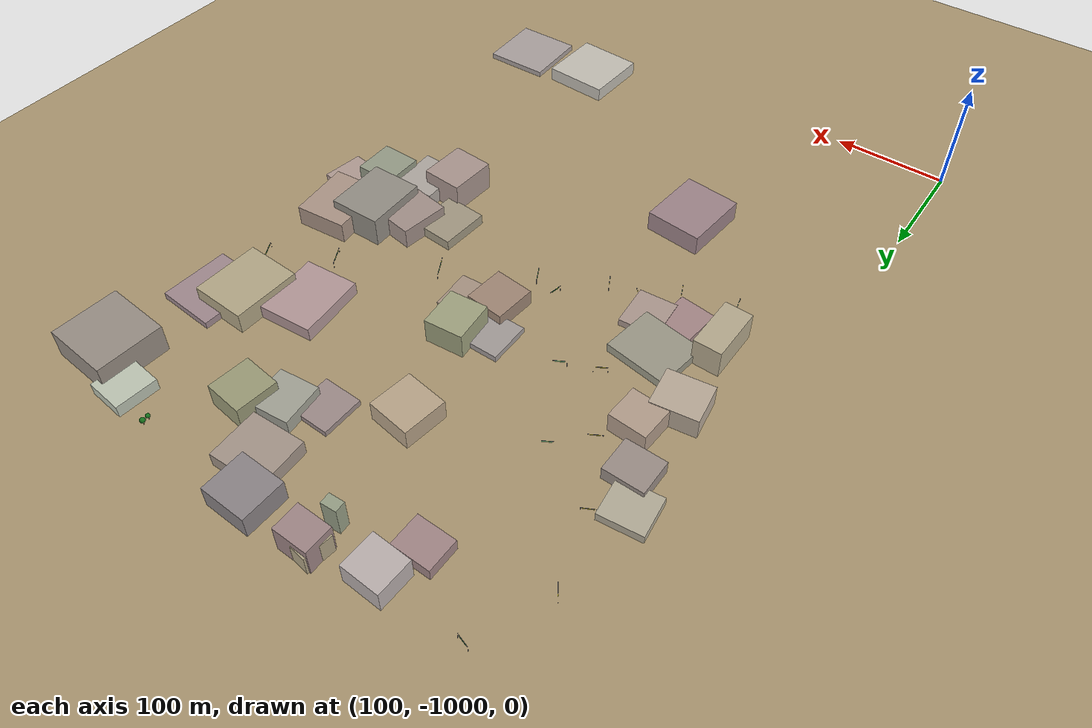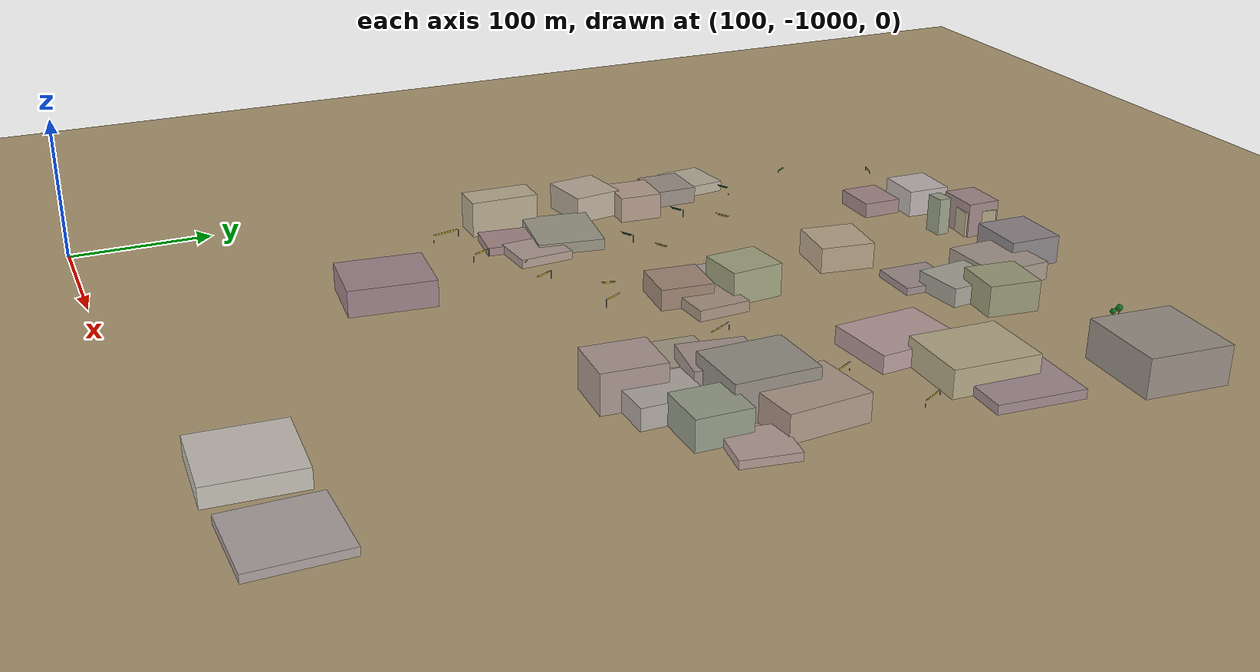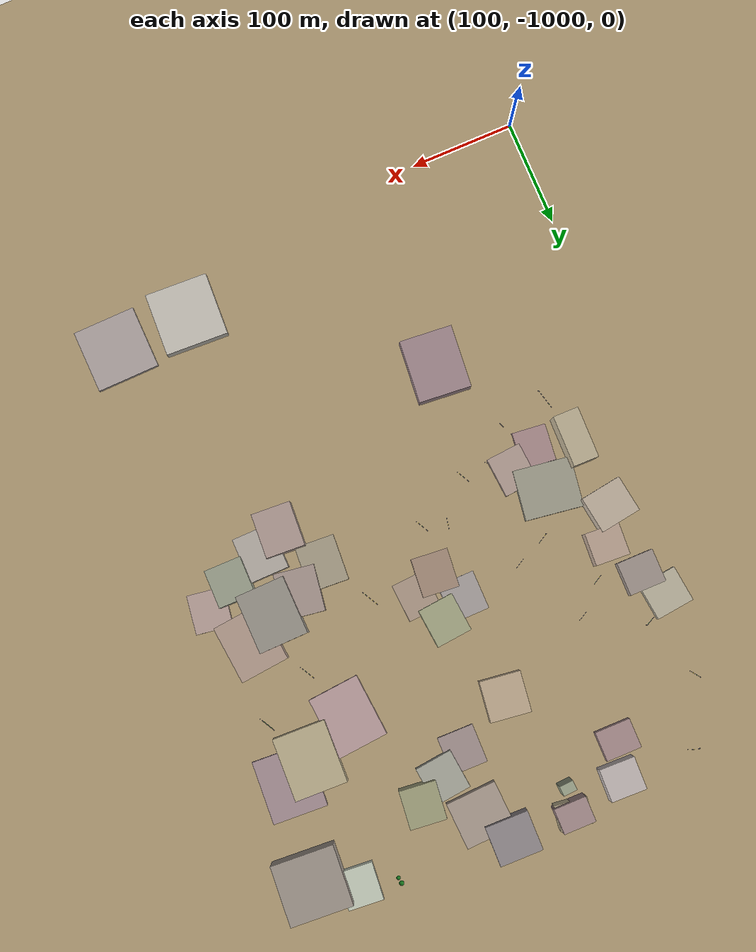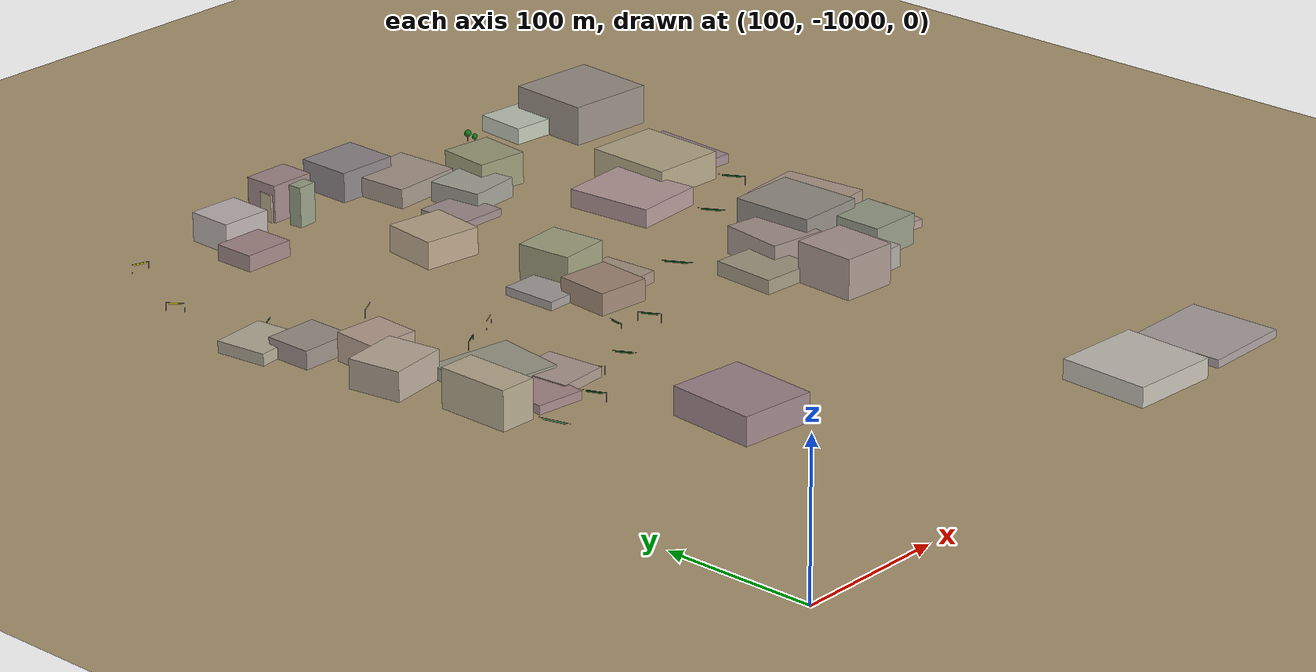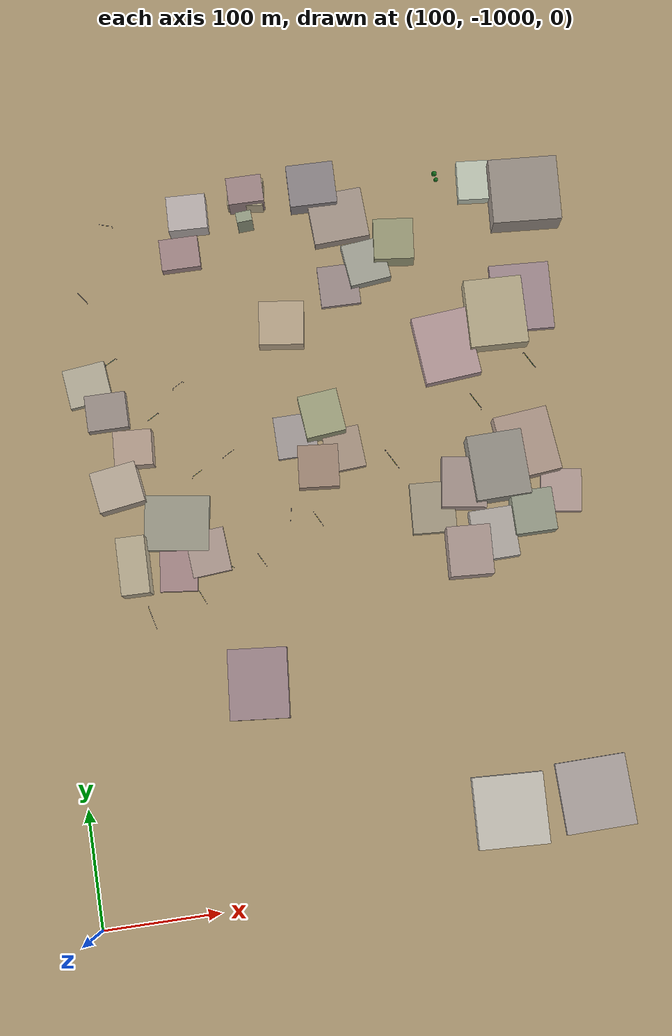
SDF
<sdf version="1.9">
 <world name="crossroad_world">
  <model name="ground_plane">
   <static>true</static>
   <pose>0 0 -0.05 0 0 0</pose>
   <link name="link">
    <collision name="collision">
     <geometry><plane><normal>0 0 1</normal><size>10000 10000</size></plane></geometry>
    </collision>
    <visual name="visual">
     <geometry><plane><normal>0 0 1</normal><size>15000 15000</size></plane></geometry>
     <material><ambient>0.68 0.60 0.45 1</ambient><diffuse>0.68 0.60 0.45 1</diffuse></material>
    </visual>
   </link>
  </model>
  <model name="gantry_3">
   <static>true</static>
   <pose>149.348 -457.128 0 0 0 2.202</pose>
   <link name="link">
    <visual name="post_l">
     <pose>-5.700 0 2.925 0 0 0</pose>
     <geometry><cylinder><radius>0.1</radius><length>5.85</length></cylinder></geometry>
     <material><ambient>0.30 0.30 0.35 1</ambient><diffuse>0.30 0.30 0.35 1</diffuse></material>
    </visual>
    <visual name="post_r">
     <pose>5.700 0 2.925 0 0 0</pose>
     <geometry><cylinder><radius>0.1</radius><length>5.85</length></cylinder></geometry>
     <material><ambient>0.30 0.30 0.35 1</ambient><diffuse>0.30 0.30 0.35 1</diffuse></material>
    </visual>
    <visual name="beam">
     <pose>0 0 6.000 0 0 0</pose>
     <geometry><box><size>11.400 0.22 0.22</size></box></geometry>
     <material><ambient>0.30 0.30 0.35 1</ambient><diffuse>0.30 0.30 0.35 1</diffuse></material>
    </visual>
    <visual name="sign_border">
     <pose>0 -0.14 5.450 0 0 0</pose>
     <geometry><box><size>8.288 0.04 0.92</size></box></geometry>
     <material><ambient>0.90 0.85 0.10 1</ambient><diffuse>0.90 0.85 0.10 1</diffuse></material>
    </visual>
    <visual name="sign_panel">
     <pose>0 -0.15 5.450 0 0 0</pose>
     <geometry><box><size>8.208 0.05 0.86</size></box></geometry>
     <material><ambient>0.05 0.38 0.10 1</ambient><diffuse>0.05 0.38 0.10 1</diffuse></material>
    </visual>
    <collision name="col_post_l">
     <pose>-5.700 0 2.925 0 0 0</pose>
     <geometry><cylinder><radius>0.1</radius><length>5.85</length></cylinder></geometry>
    </collision>
    <collision name="col_post_r">
     <pose>5.700 0 2.925 0 0 0</pose>
     <geometry><cylinder><radius>0.1</radius><length>5.85</length></cylinder></geometry>
    </collision>
    <collision name="col_beam">
     <pose>0 0 6.000 0 0 0</pose>
     <geometry><box><size>11.400 0.22 0.22</size></box></geometry>
    </collision>
   </link>
  </model>
  <model name="gantry_4">
   <static>true</static>
   <pose>167.095 -518.623 0 0 0 0.479</pose>
   <link name="link">
    <visual name="post_l">
     <pose>-5.700 0 2.925 0 0 0</pose>
     <geometry><cylinder><radius>0.1</radius><length>5.85</length></cylinder></geometry>
     <material><ambient>0.30 0.30 0.35 1</ambient><diffuse>0.30 0.30 0.35 1</diffuse></material>
    </visual>
    <visual name="post_r">
     <pose>5.700 0 2.925 0 0 0</pose>
     <geometry><cylinder><radius>0.1</radius><length>5.85</length></cylinder></geometry>
     <material><ambient>0.30 0.30 0.35 1</ambient><diffuse>0.30 0.30 0.35 1</diffuse></material>
    </visual>
    <visual name="beam">
     <pose>0 0 6.000 0 0 0</pose>
     <geometry><box><size>11.400 0.22 0.22</size></box></geometry>
     <material><ambient>0.30 0.30 0.35 1</ambient><diffuse>0.30 0.30 0.35 1</diffuse></material>
    </visual>
    <visual name="sign_border">
     <pose>0 -0.14 5.450 0 0 0</pose>
     <geometry><box><size>8.288 0.04 0.92</size></box></geometry>
     <material><ambient>0.90 0.85 0.10 1</ambient><diffuse>0.90 0.85 0.10 1</diffuse></material>
    </visual>
    <visual name="sign_panel">
     <pose>0 -0.15 5.450 0 0 0</pose>
     <geometry><box><size>8.208 0.05 0.86</size></box></geometry>
     <material><ambient>0.05 0.38 0.10 1</ambient><diffuse>0.05 0.38 0.10 1</diffuse></material>
    </visual>
    <collision name="col_post_l">
     <pose>-5.700 0 2.925 0 0 0</pose>
     <geometry><cylinder><radius>0.1</radius><length>5.85</length></cylinder></geometry>
    </collision>
    <collision name="col_post_r">
     <pose>5.700 0 2.925 0 0 0</pose>
     <geometry><cylinder><radius>0.1</radius><length>5.85</length></cylinder></geometry>
    </collision>
    <collision name="col_beam">
     <pose>0 0 6.000 0 0 0</pose>
     <geometry><box><size>11.400 0.22 0.22</size></box></geometry>
    </collision>
   </link>
  </model>
  <model name="gantry_5">
   <static>true</static>
   <pose>274.331 -709.474 0 0 0 -1.088</pose>
   <link name="link">
    <visual name="post_l">
     <pose>-7.300 0 2.925 0 0 0</pose>
     <geometry><cylinder><radius>0.1</radius><length>5.85</length></cylinder></geometry>
     <material><ambient>0.30 0.30 0.35 1</ambient><diffuse>0.30 0.30 0.35 1</diffuse></material>
    </visual>
    <visual name="post_r">
     <pose>7.300 0 2.925 0 0 0</pose>
     <geometry><cylinder><radius>0.1</radius><length>5.85</length></cylinder></geometry>
     <material><ambient>0.30 0.30 0.35 1</ambient><diffuse>0.30 0.30 0.35 1</diffuse></material>
    </visual>
    <visual name="beam">
     <pose>0 0 6.000 0 0 0</pose>
     <geometry><box><size>14.600 0.22 0.22</size></box></geometry>
     <material><ambient>0.30 0.30 0.35 1</ambient><diffuse>0.30 0.30 0.35 1</diffuse></material>
    </visual>
    <visual name="sign_border">
     <pose>0 -0.14 5.450 0 0 0</pose>
     <geometry><box><size>10.592 0.04 0.92</size></box></geometry>
     <material><ambient>0.90 0.85 0.10 1</ambient><diffuse>0.90 0.85 0.10 1</diffuse></material>
    </visual>
    <visual name="sign_panel">
     <pose>0 -0.15 5.450 0 0 0</pose>
     <geometry><box><size>10.512 0.05 0.86</size></box></geometry>
     <material><ambient>0.05 0.38 0.10 1</ambient><diffuse>0.05 0.38 0.10 1</diffuse></material>
    </visual>
    <collision name="col_post_l">
     <pose>-7.300 0 2.925 0 0 0</pose>
     <geometry><cylinder><radius>0.1</radius><length>5.85</length></cylinder></geometry>
    </collision>
    <collision name="col_post_r">
     <pose>7.300 0 2.925 0 0 0</pose>
     <geometry><cylinder><radius>0.1</radius><length>5.85</length></cylinder></geometry>
    </collision>
    <collision name="col_beam">
     <pose>0 0 6.000 0 0 0</pose>
     <geometry><box><size>14.600 0.22 0.22</size></box></geometry>
    </collision>
   </link>
  </model>
  <model name="gantry_6">
   <static>true</static>
   <pose>220.195 -735.282 0 0 0 -1.170</pose>
   <link name="link">
    <visual name="post_l">
     <pose>-7.300 0 2.925 0 0 0</pose>
     <geometry><cylinder><radius>0.1</radius><length>5.85</length></cylinder></geometry>
     <material><ambient>0.30 0.30 0.35 1</ambient><diffuse>0.30 0.30 0.35 1</diffuse></material>
    </visual>
    <visual name="post_r">
     <pose>7.300 0 2.925 0 0 0</pose>
     <geometry><cylinder><radius>0.1</radius><length>5.85</length></cylinder></geometry>
     <material><ambient>0.30 0.30 0.35 1</ambient><diffuse>0.30 0.30 0.35 1</diffuse></material>
    </visual>
    <visual name="beam">
     <pose>0 0 6.000 0 0 0</pose>
     <geometry><box><size>14.600 0.22 0.22</size></box></geometry>
     <material><ambient>0.30 0.30 0.35 1</ambient><diffuse>0.30 0.30 0.35 1</diffuse></material>
    </visual>
    <visual name="sign_border">
     <pose>0 -0.14 5.450 0 0 0</pose>
     <geometry><box><size>10.592 0.04 0.92</size></box></geometry>
     <material><ambient>0.90 0.85 0.10 1</ambient><diffuse>0.90 0.85 0.10 1</diffuse></material>
    </visual>
    <visual name="sign_panel">
     <pose>0 -0.15 5.450 0 0 0</pose>
     <geometry><box><size>10.512 0.05 0.86</size></box></geometry>
     <material><ambient>0.05 0.38 0.10 1</ambient><diffuse>0.05 0.38 0.10 1</diffuse></material>
    </visual>
    <collision name="col_post_l">
     <pose>-7.300 0 2.925 0 0 0</pose>
     <geometry><cylinder><radius>0.1</radius><length>5.85</length></cylinder></geometry>
    </collision>
    <collision name="col_post_r">
     <pose>7.300 0 2.925 0 0 0</pose>
     <geometry><cylinder><radius>0.1</radius><length>5.85</length></cylinder></geometry>
    </collision>
    <collision name="col_beam">
     <pose>0 0 6.000 0 0 0</pose>
     <geometry><box><size>14.600 0.22 0.22</size></box></geometry>
    </collision>
   </link>
  </model>
  <model name="gantry_7">
   <static>true</static>
   <pose>327.461 -681.595 0 0 0 -1.088</pose>
   <link name="link">
    <visual name="post_l">
     <pose>-7.300 0 2.925 0 0 0</pose>
     <geometry><cylinder><radius>0.1</radius><length>5.85</length></cylinder></geometry>
     <material><ambient>0.30 0.30 0.35 1</ambient><diffuse>0.30 0.30 0.35 1</diffuse></material>
    </visual>
    <visual name="post_r">
     <pose>7.300 0 2.925 0 0 0</pose>
     <geometry><cylinder><radius>0.1</radius><length>5.85</length></cylinder></geometry>
     <material><ambient>0.30 0.30 0.35 1</ambient><diffuse>0.30 0.30 0.35 1</diffuse></material>
    </visual>
    <visual name="beam">
     <pose>0 0 6.000 0 0 0</pose>
     <geometry><box><size>14.600 0.22 0.22</size></box></geometry>
     <material><ambient>0.30 0.30 0.35 1</ambient><diffuse>0.30 0.30 0.35 1</diffuse></material>
    </visual>
    <visual name="sign_border">
     <pose>0 -0.14 5.450 0 0 0</pose>
     <geometry><box><size>10.592 0.04 0.92</size></box></geometry>
     <material><ambient>0.90 0.85 0.10 1</ambient><diffuse>0.90 0.85 0.10 1</diffuse></material>
    </visual>
    <visual name="sign_panel">
     <pose>0 -0.15 5.450 0 0 0</pose>
     <geometry><box><size>10.512 0.05 0.86</size></box></geometry>
     <material><ambient>0.05 0.38 0.10 1</ambient><diffuse>0.05 0.38 0.10 1</diffuse></material>
    </visual>
    <collision name="col_post_l">
     <pose>-7.300 0 2.925 0 0 0</pose>
     <geometry><cylinder><radius>0.1</radius><length>5.85</length></cylinder></geometry>
    </collision>
    <collision name="col_post_r">
     <pose>7.300 0 2.925 0 0 0</pose>
     <geometry><cylinder><radius>0.1</radius><length>5.85</length></cylinder></geometry>
    </collision>
    <collision name="col_beam">
     <pose>0 0 6.000 0 0 0</pose>
     <geometry><box><size>14.600 0.22 0.22</size></box></geometry>
    </collision>
   </link>
  </model>
  <model name="gantry_23">
   <static>true</static>
   <pose>178.011 -394.805 0 0 0 2.847</pose>
   <link name="link">
    <visual name="post_l">
     <pose>-5.700 0 2.925 0 0 0</pose>
     <geometry><cylinder><radius>0.1</radius><length>5.85</length></cylinder></geometry>
     <material><ambient>0.30 0.30 0.35 1</ambient><diffuse>0.30 0.30 0.35 1</diffuse></material>
    </visual>
    <visual name="post_r">
     <pose>5.700 0 2.925 0 0 0</pose>
     <geometry><cylinder><radius>0.1</radius><length>5.85</length></cylinder></geometry>
     <material><ambient>0.30 0.30 0.35 1</ambient><diffuse>0.30 0.30 0.35 1</diffuse></material>
    </visual>
    <visual name="beam">
     <pose>0 0 6.000 0 0 0</pose>
     <geometry><box><size>11.400 0.22 0.22</size></box></geometry>
     <material><ambient>0.30 0.30 0.35 1</ambient><diffuse>0.30 0.30 0.35 1</diffuse></material>
    </visual>
    <visual name="sign_border">
     <pose>0 -0.14 5.450 0 0 0</pose>
     <geometry><box><size>8.288 0.04 0.92</size></box></geometry>
     <material><ambient>0.90 0.85 0.10 1</ambient><diffuse>0.90 0.85 0.10 1</diffuse></material>
    </visual>
    <visual name="sign_panel">
     <pose>0 -0.15 5.450 0 0 0</pose>
     <geometry><box><size>8.208 0.05 0.86</size></box></geometry>
     <material><ambient>0.05 0.38 0.10 1</ambient><diffuse>0.05 0.38 0.10 1</diffuse></material>
    </visual>
    <collision name="col_post_l">
     <pose>-5.700 0 2.925 0 0 0</pose>
     <geometry><cylinder><radius>0.1</radius><length>5.85</length></cylinder></geometry>
    </collision>
    <collision name="col_post_r">
     <pose>5.700 0 2.925 0 0 0</pose>
     <geometry><cylinder><radius>0.1</radius><length>5.85</length></cylinder></geometry>
    </collision>
    <collision name="col_beam">
     <pose>0 0 6.000 0 0 0</pose>
     <geometry><box><size>11.400 0.22 0.22</size></box></geometry>
    </collision>
   </link>
  </model>
  <model name="gantry_43">
   <static>true</static>
   <pose>197.411 -572.626 0 0 0 0.527</pose>
   <link name="link">
    <visual name="post_l">
     <pose>-5.700 0 2.925 0 0 0</pose>
     <geometry><cylinder><radius>0.1</radius><length>5.85</length></cylinder></geometry>
     <material><ambient>0.30 0.30 0.35 1</ambient><diffuse>0.30 0.30 0.35 1</diffuse></material>
    </visual>
    <visual name="post_r">
     <pose>5.700 0 2.925 0 0 0</pose>
     <geometry><cylinder><radius>0.1</radius><length>5.85</length></cylinder></geometry>
     <material><ambient>0.30 0.30 0.35 1</ambient><diffuse>0.30 0.30 0.35 1</diffuse></material>
    </visual>
    <visual name="beam">
     <pose>0 0 6.000 0 0 0</pose>
     <geometry><box><size>11.400 0.22 0.22</size></box></geometry>
     <material><ambient>0.30 0.30 0.35 1</ambient><diffuse>0.30 0.30 0.35 1</diffuse></material>
    </visual>
    <visual name="sign_border">
     <pose>0 -0.14 5.450 0 0 0</pose>
     <geometry><box><size>8.288 0.04 0.92</size></box></geometry>
     <material><ambient>0.90 0.85 0.10 1</ambient><diffuse>0.90 0.85 0.10 1</diffuse></material>
    </visual>
    <visual name="sign_panel">
     <pose>0 -0.15 5.450 0 0 0</pose>
     <geometry><box><size>8.208 0.05 0.86</size></box></geometry>
     <material><ambient>0.05 0.38 0.10 1</ambient><diffuse>0.05 0.38 0.10 1</diffuse></material>
    </visual>
    <collision name="col_post_l">
     <pose>-5.700 0 2.925 0 0 0</pose>
     <geometry><cylinder><radius>0.1</radius><length>5.85</length></cylinder></geometry>
    </collision>
    <collision name="col_post_r">
     <pose>5.700 0 2.925 0 0 0</pose>
     <geometry><cylinder><radius>0.1</radius><length>5.85</length></cylinder></geometry>
    </collision>
    <collision name="col_beam">
     <pose>0 0 6.000 0 0 0</pose>
     <geometry><box><size>11.400 0.22 0.22</size></box></geometry>
    </collision>
   </link>
  </model>
  <model name="gantry_44">
   <static>true</static>
   <pose>229.065 -627.639 0 0 0 0.512</pose>
   <link name="link">
    <visual name="post_l">
     <pose>-5.700 0 2.925 0 0 0</pose>
     <geometry><cylinder><radius>0.1</radius><length>5.85</length></cylinder></geometry>
     <material><ambient>0.30 0.30 0.35 1</ambient><diffuse>0.30 0.30 0.35 1</diffuse></material>
    </visual>
    <visual name="post_r">
     <pose>5.700 0 2.925 0 0 0</pose>
     <geometry><cylinder><radius>0.1</radius><length>5.85</length></cylinder></geometry>
     <material><ambient>0.30 0.30 0.35 1</ambient><diffuse>0.30 0.30 0.35 1</diffuse></material>
    </visual>
    <visual name="beam">
     <pose>0 0 6.000 0 0 0</pose>
     <geometry><box><size>11.400 0.22 0.22</size></box></geometry>
     <material><ambient>0.30 0.30 0.35 1</ambient><diffuse>0.30 0.30 0.35 1</diffuse></material>
    </visual>
    <visual name="sign_border">
     <pose>0 -0.14 5.450 0 0 0</pose>
     <geometry><box><size>8.288 0.04 0.92</size></box></geometry>
     <material><ambient>0.90 0.85 0.10 1</ambient><diffuse>0.90 0.85 0.10 1</diffuse></material>
    </visual>
    <visual name="sign_panel">
     <pose>0 -0.15 5.450 0 0 0</pose>
     <geometry><box><size>8.208 0.05 0.86</size></box></geometry>
     <material><ambient>0.05 0.38 0.10 1</ambient><diffuse>0.05 0.38 0.10 1</diffuse></material>
    </visual>
    <collision name="col_post_l">
     <pose>-5.700 0 2.925 0 0 0</pose>
     <geometry><cylinder><radius>0.1</radius><length>5.85</length></cylinder></geometry>
    </collision>
    <collision name="col_post_r">
     <pose>5.700 0 2.925 0 0 0</pose>
     <geometry><cylinder><radius>0.1</radius><length>5.85</length></cylinder></geometry>
    </collision>
    <collision name="col_beam">
     <pose>0 0 6.000 0 0 0</pose>
     <geometry><box><size>11.400 0.22 0.22</size></box></geometry>
    </collision>
   </link>
  </model>
  <model name="gantry_45">
   <static>true</static>
   <pose>247.146 -710.972 0 0 0 -0.750</pose>
   <link name="link">
    <visual name="post_l">
     <pose>-5.700 0 2.925 0 0 0</pose>
     <geometry><cylinder><radius>0.1</radius><length>5.85</length></cylinder></geometry>
     <material><ambient>0.30 0.30 0.35 1</ambient><diffuse>0.30 0.30 0.35 1</diffuse></material>
    </visual>
    <visual name="post_r">
     <pose>5.700 0 2.925 0 0 0</pose>
     <geometry><cylinder><radius>0.1</radius><length>5.85</length></cylinder></geometry>
     <material><ambient>0.30 0.30 0.35 1</ambient><diffuse>0.30 0.30 0.35 1</diffuse></material>
    </visual>
    <visual name="beam">
     <pose>0 0 6.000 0 0 0</pose>
     <geometry><box><size>11.400 0.22 0.22</size></box></geometry>
     <material><ambient>0.30 0.30 0.35 1</ambient><diffuse>0.30 0.30 0.35 1</diffuse></material>
    </visual>
    <visual name="sign_border">
     <pose>0 -0.14 5.450 0 0 0</pose>
     <geometry><box><size>8.288 0.04 0.92</size></box></geometry>
     <material><ambient>0.90 0.85 0.10 1</ambient><diffuse>0.90 0.85 0.10 1</diffuse></material>
    </visual>
    <visual name="sign_panel">
     <pose>0 -0.15 5.450 0 0 0</pose>
     <geometry><box><size>8.208 0.05 0.86</size></box></geometry>
     <material><ambient>0.05 0.38 0.10 1</ambient><diffuse>0.05 0.38 0.10 1</diffuse></material>
    </visual>
    <collision name="col_post_l">
     <pose>-5.700 0 2.925 0 0 0</pose>
     <geometry><cylinder><radius>0.1</radius><length>5.85</length></cylinder></geometry>
    </collision>
    <collision name="col_post_r">
     <pose>5.700 0 2.925 0 0 0</pose>
     <geometry><cylinder><radius>0.1</radius><length>5.85</length></cylinder></geometry>
    </collision>
    <collision name="col_beam">
     <pose>0 0 6.000 0 0 0</pose>
     <geometry><box><size>11.400 0.22 0.22</size></box></geometry>
    </collision>
   </link>
  </model>
  <model name="gantry_95">
   <static>true</static>
   <pose>530.845 -569.801 0 0 0 -1.072</pose>
   <link name="link">
    <visual name="post_l">
     <pose>-8.900 0 2.925 0 0 0</pose>
     <geometry><cylinder><radius>0.1</radius><length>5.85</length></cylinder></geometry>
     <material><ambient>0.30 0.30 0.35 1</ambient><diffuse>0.30 0.30 0.35 1</diffuse></material>
    </visual>
    <visual name="post_r">
     <pose>8.900 0 2.925 0 0 0</pose>
     <geometry><cylinder><radius>0.1</radius><length>5.85</length></cylinder></geometry>
     <material><ambient>0.30 0.30 0.35 1</ambient><diffuse>0.30 0.30 0.35 1</diffuse></material>
    </visual>
    <visual name="beam">
     <pose>0 0 6.000 0 0 0</pose>
     <geometry><box><size>17.800 0.22 0.22</size></box></geometry>
     <material><ambient>0.30 0.30 0.35 1</ambient><diffuse>0.30 0.30 0.35 1</diffuse></material>
    </visual>
    <visual name="sign_border">
     <pose>0 -0.14 5.450 0 0 0</pose>
     <geometry><box><size>12.896 0.04 0.92</size></box></geometry>
     <material><ambient>0.90 0.85 0.10 1</ambient><diffuse>0.90 0.85 0.10 1</diffuse></material>
    </visual>
    <visual name="sign_panel">
     <pose>0 -0.15 5.450 0 0 0</pose>
     <geometry><box><size>12.816 0.05 0.86</size></box></geometry>
     <material><ambient>0.05 0.38 0.10 1</ambient><diffuse>0.05 0.38 0.10 1</diffuse></material>
    </visual>
    <collision name="col_post_l">
     <pose>-8.900 0 2.925 0 0 0</pose>
     <geometry><cylinder><radius>0.1</radius><length>5.85</length></cylinder></geometry>
    </collision>
    <collision name="col_post_r">
     <pose>8.900 0 2.925 0 0 0</pose>
     <geometry><cylinder><radius>0.1</radius><length>5.85</length></cylinder></geometry>
    </collision>
    <collision name="col_beam">
     <pose>0 0 6.000 0 0 0</pose>
     <geometry><box><size>17.800 0.22 0.22</size></box></geometry>
    </collision>
   </link>
  </model>
  <model name="gantry_96">
   <static>true</static>
   <pose>478.163 -598.518 0 0 0 -1.072</pose>
   <link name="link">
    <visual name="post_l">
     <pose>-8.900 0 2.925 0 0 0</pose>
     <geometry><cylinder><radius>0.1</radius><length>5.85</length></cylinder></geometry>
     <material><ambient>0.30 0.30 0.35 1</ambient><diffuse>0.30 0.30 0.35 1</diffuse></material>
    </visual>
    <visual name="post_r">
     <pose>8.900 0 2.925 0 0 0</pose>
     <geometry><cylinder><radius>0.1</radius><length>5.85</length></cylinder></geometry>
     <material><ambient>0.30 0.30 0.35 1</ambient><diffuse>0.30 0.30 0.35 1</diffuse></material>
    </visual>
    <visual name="beam">
     <pose>0 0 6.000 0 0 0</pose>
     <geometry><box><size>17.800 0.22 0.22</size></box></geometry>
     <material><ambient>0.30 0.30 0.35 1</ambient><diffuse>0.30 0.30 0.35 1</diffuse></material>
    </visual>
    <visual name="sign_border">
     <pose>0 -0.14 5.450 0 0 0</pose>
     <geometry><box><size>12.896 0.04 0.92</size></box></geometry>
     <material><ambient>0.90 0.85 0.10 1</ambient><diffuse>0.90 0.85 0.10 1</diffuse></material>
    </visual>
    <visual name="sign_panel">
     <pose>0 -0.15 5.450 0 0 0</pose>
     <geometry><box><size>12.816 0.05 0.86</size></box></geometry>
     <material><ambient>0.05 0.38 0.10 1</ambient><diffuse>0.05 0.38 0.10 1</diffuse></material>
    </visual>
    <collision name="col_post_l">
     <pose>-8.900 0 2.925 0 0 0</pose>
     <geometry><cylinder><radius>0.1</radius><length>5.85</length></cylinder></geometry>
    </collision>
    <collision name="col_post_r">
     <pose>8.900 0 2.925 0 0 0</pose>
     <geometry><cylinder><radius>0.1</radius><length>5.85</length></cylinder></geometry>
    </collision>
    <collision name="col_beam">
     <pose>0 0 6.000 0 0 0</pose>
     <geometry><box><size>17.800 0.22 0.22</size></box></geometry>
    </collision>
   </link>
  </model>
  <model name="gantry_101">
   <static>true</static>
   <pose>398.680 -639.850 0 0 0 -1.075</pose>
   <link name="link">
    <visual name="post_l">
     <pose>-10.500 0 2.925 0 0 0</pose>
     <geometry><cylinder><radius>0.1</radius><length>5.85</length></cylinder></geometry>
     <material><ambient>0.30 0.30 0.35 1</ambient><diffuse>0.30 0.30 0.35 1</diffuse></material>
    </visual>
    <visual name="post_r">
     <pose>10.500 0 2.925 0 0 0</pose>
     <geometry><cylinder><radius>0.1</radius><length>5.85</length></cylinder></geometry>
     <material><ambient>0.30 0.30 0.35 1</ambient><diffuse>0.30 0.30 0.35 1</diffuse></material>
    </visual>
    <visual name="beam">
     <pose>0 0 6.000 0 0 0</pose>
     <geometry><box><size>21.000 0.22 0.22</size></box></geometry>
     <material><ambient>0.30 0.30 0.35 1</ambient><diffuse>0.30 0.30 0.35 1</diffuse></material>
    </visual>
    <visual name="sign_border">
     <pose>0 -0.14 5.450 0 0 0</pose>
     <geometry><box><size>15.200 0.04 0.92</size></box></geometry>
     <material><ambient>0.90 0.85 0.10 1</ambient><diffuse>0.90 0.85 0.10 1</diffuse></material>
    </visual>
    <visual name="sign_panel">
     <pose>0 -0.15 5.450 0 0 0</pose>
     <geometry><box><size>15.120 0.05 0.86</size></box></geometry>
     <material><ambient>0.05 0.38 0.10 1</ambient><diffuse>0.05 0.38 0.10 1</diffuse></material>
    </visual>
    <collision name="col_post_l">
     <pose>-10.500 0 2.925 0 0 0</pose>
     <geometry><cylinder><radius>0.1</radius><length>5.85</length></cylinder></geometry>
    </collision>
    <collision name="col_post_r">
     <pose>10.500 0 2.925 0 0 0</pose>
     <geometry><cylinder><radius>0.1</radius><length>5.85</length></cylinder></geometry>
    </collision>
    <collision name="col_beam">
     <pose>0 0 6.000 0 0 0</pose>
     <geometry><box><size>21.000 0.22 0.22</size></box></geometry>
    </collision>
   </link>
  </model>
  <model name="gantry_102">
   <static>true</static>
   <pose>174.915 -746.092 0 0 0 -1.327</pose>
   <link name="link">
    <visual name="post_l">
     <pose>-10.500 0 2.925 0 0 0</pose>
     <geometry><cylinder><radius>0.1</radius><length>5.85</length></cylinder></geometry>
     <material><ambient>0.30 0.30 0.35 1</ambient><diffuse>0.30 0.30 0.35 1</diffuse></material>
    </visual>
    <visual name="post_r">
     <pose>10.500 0 2.925 0 0 0</pose>
     <geometry><cylinder><radius>0.1</radius><length>5.85</length></cylinder></geometry>
     <material><ambient>0.30 0.30 0.35 1</ambient><diffuse>0.30 0.30 0.35 1</diffuse></material>
    </visual>
    <visual name="beam">
     <pose>0 0 6.000 0 0 0</pose>
     <geometry><box><size>21.000 0.22 0.22</size></box></geometry>
     <material><ambient>0.30 0.30 0.35 1</ambient><diffuse>0.30 0.30 0.35 1</diffuse></material>
    </visual>
    <visual name="sign_border">
     <pose>0 -0.14 5.450 0 0 0</pose>
     <geometry><box><size>15.200 0.04 0.92</size></box></geometry>
     <material><ambient>0.90 0.85 0.10 1</ambient><diffuse>0.90 0.85 0.10 1</diffuse></material>
    </visual>
    <visual name="sign_panel">
     <pose>0 -0.15 5.450 0 0 0</pose>
     <geometry><box><size>15.120 0.05 0.86</size></box></geometry>
     <material><ambient>0.05 0.38 0.10 1</ambient><diffuse>0.05 0.38 0.10 1</diffuse></material>
    </visual>
    <collision name="col_post_l">
     <pose>-10.500 0 2.925 0 0 0</pose>
     <geometry><cylinder><radius>0.1</radius><length>5.85</length></cylinder></geometry>
    </collision>
    <collision name="col_post_r">
     <pose>10.500 0 2.925 0 0 0</pose>
     <geometry><cylinder><radius>0.1</radius><length>5.85</length></cylinder></geometry>
    </collision>
    <collision name="col_beam">
     <pose>0 0 6.000 0 0 0</pose>
     <geometry><box><size>21.000 0.22 0.22</size></box></geometry>
    </collision>
   </link>
  </model>
  <model name="gantry_129">
   <static>true</static>
   <pose>304.745 -674.843 0 0 0 4.522</pose>
   <link name="link">
    <visual name="post_l">
     <pose>-5.700 0 2.925 0 0 0</pose>
     <geometry><cylinder><radius>0.1</radius><length>5.85</length></cylinder></geometry>
     <material><ambient>0.30 0.30 0.35 1</ambient><diffuse>0.30 0.30 0.35 1</diffuse></material>
    </visual>
    <visual name="post_r">
     <pose>5.700 0 2.925 0 0 0</pose>
     <geometry><cylinder><radius>0.1</radius><length>5.85</length></cylinder></geometry>
     <material><ambient>0.30 0.30 0.35 1</ambient><diffuse>0.30 0.30 0.35 1</diffuse></material>
    </visual>
    <visual name="beam">
     <pose>0 0 6.000 0 0 0</pose>
     <geometry><box><size>11.400 0.22 0.22</size></box></geometry>
     <material><ambient>0.30 0.30 0.35 1</ambient><diffuse>0.30 0.30 0.35 1</diffuse></material>
    </visual>
    <visual name="sign_border">
     <pose>0 -0.14 5.450 0 0 0</pose>
     <geometry><box><size>8.288 0.04 0.92</size></box></geometry>
     <material><ambient>0.90 0.85 0.10 1</ambient><diffuse>0.90 0.85 0.10 1</diffuse></material>
    </visual>
    <visual name="sign_panel">
     <pose>0 -0.15 5.450 0 0 0</pose>
     <geometry><box><size>8.208 0.05 0.86</size></box></geometry>
     <material><ambient>0.05 0.38 0.10 1</ambient><diffuse>0.05 0.38 0.10 1</diffuse></material>
    </visual>
    <collision name="col_post_l">
     <pose>-5.700 0 2.925 0 0 0</pose>
     <geometry><cylinder><radius>0.1</radius><length>5.85</length></cylinder></geometry>
    </collision>
    <collision name="col_post_r">
     <pose>5.700 0 2.925 0 0 0</pose>
     <geometry><cylinder><radius>0.1</radius><length>5.85</length></cylinder></geometry>
    </collision>
    <collision name="col_beam">
     <pose>0 0 6.000 0 0 0</pose>
     <geometry><box><size>11.400 0.22 0.22</size></box></geometry>
    </collision>
   </link>
  </model>
  <model name="gantry_130">
   <static>true</static>
   <pose>258.129 -614.395 0 0 0 3.654</pose>
   <link name="link">
    <visual name="post_l">
     <pose>-5.700 0 2.925 0 0 0</pose>
     <geometry><cylinder><radius>0.1</radius><length>5.85</length></cylinder></geometry>
     <material><ambient>0.30 0.30 0.35 1</ambient><diffuse>0.30 0.30 0.35 1</diffuse></material>
    </visual>
    <visual name="post_r">
     <pose>5.700 0 2.925 0 0 0</pose>
     <geometry><cylinder><radius>0.1</radius><length>5.85</length></cylinder></geometry>
     <material><ambient>0.30 0.30 0.35 1</ambient><diffuse>0.30 0.30 0.35 1</diffuse></material>
    </visual>
    <visual name="beam">
     <pose>0 0 6.000 0 0 0</pose>
     <geometry><box><size>11.400 0.22 0.22</size></box></geometry>
     <material><ambient>0.30 0.30 0.35 1</ambient><diffuse>0.30 0.30 0.35 1</diffuse></material>
    </visual>
    <visual name="sign_border">
     <pose>0 -0.14 5.450 0 0 0</pose>
     <geometry><box><size>8.288 0.04 0.92</size></box></geometry>
     <material><ambient>0.90 0.85 0.10 1</ambient><diffuse>0.90 0.85 0.10 1</diffuse></material>
    </visual>
    <visual name="sign_panel">
     <pose>0 -0.15 5.450 0 0 0</pose>
     <geometry><box><size>8.208 0.05 0.86</size></box></geometry>
     <material><ambient>0.05 0.38 0.10 1</ambient><diffuse>0.05 0.38 0.10 1</diffuse></material>
    </visual>
    <collision name="col_post_l">
     <pose>-5.700 0 2.925 0 0 0</pose>
     <geometry><cylinder><radius>0.1</radius><length>5.85</length></cylinder></geometry>
    </collision>
    <collision name="col_post_r">
     <pose>5.700 0 2.925 0 0 0</pose>
     <geometry><cylinder><radius>0.1</radius><length>5.85</length></cylinder></geometry>
    </collision>
    <collision name="col_beam">
     <pose>0 0 6.000 0 0 0</pose>
     <geometry><box><size>11.400 0.22 0.22</size></box></geometry>
    </collision>
   </link>
  </model>
  <model name="gantry_131">
   <static>true</static>
   <pose>222.650 -547.533 0 0 0 3.655</pose>
   <link name="link">
    <visual name="post_l">
     <pose>-5.700 0 2.925 0 0 0</pose>
     <geometry><cylinder><radius>0.1</radius><length>5.85</length></cylinder></geometry>
     <material><ambient>0.30 0.30 0.35 1</ambient><diffuse>0.30 0.30 0.35 1</diffuse></material>
    </visual>
    <visual name="post_r">
     <pose>5.700 0 2.925 0 0 0</pose>
     <geometry><cylinder><radius>0.1</radius><length>5.85</length></cylinder></geometry>
     <material><ambient>0.30 0.30 0.35 1</ambient><diffuse>0.30 0.30 0.35 1</diffuse></material>
    </visual>
    <visual name="beam">
     <pose>0 0 6.000 0 0 0</pose>
     <geometry><box><size>11.400 0.22 0.22</size></box></geometry>
     <material><ambient>0.30 0.30 0.35 1</ambient><diffuse>0.30 0.30 0.35 1</diffuse></material>
    </visual>
    <visual name="sign_border">
     <pose>0 -0.14 5.450 0 0 0</pose>
     <geometry><box><size>8.288 0.04 0.92</size></box></geometry>
     <material><ambient>0.90 0.85 0.10 1</ambient><diffuse>0.90 0.85 0.10 1</diffuse></material>
    </visual>
    <visual name="sign_panel">
     <pose>0 -0.15 5.450 0 0 0</pose>
     <geometry><box><size>8.208 0.05 0.86</size></box></geometry>
     <material><ambient>0.05 0.38 0.10 1</ambient><diffuse>0.05 0.38 0.10 1</diffuse></material>
    </visual>
    <collision name="col_post_l">
     <pose>-5.700 0 2.925 0 0 0</pose>
     <geometry><cylinder><radius>0.1</radius><length>5.85</length></cylinder></geometry>
    </collision>
    <collision name="col_post_r">
     <pose>5.700 0 2.925 0 0 0</pose>
     <geometry><cylinder><radius>0.1</radius><length>5.85</length></cylinder></geometry>
    </collision>
    <collision name="col_beam">
     <pose>0 0 6.000 0 0 0</pose>
     <geometry><box><size>11.400 0.22 0.22</size></box></geometry>
    </collision>
   </link>
  </model>
  <model name="tree_55">
   <static>true</static>
   <pose>473.769 -389.154 0 0 0 0</pose>
   <link name="link">
    <visual name="trunk">
     <pose>0 0 1.964 0 0 0</pose>
     <geometry><cylinder><radius>0.172</radius><length>3.928</length></cylinder></geometry>
     <material><ambient>0.38 0.22 0.08 1</ambient><diffuse>0.38 0.22 0.08 1</diffuse></material>
    </visual>
    <visual name="canopy">
     <pose>0 0 5.445 0 0 0</pose>
     <geometry><sphere><radius>2.333</radius></sphere></geometry>
     <material><ambient>0.08 0.44 0.10 1</ambient><diffuse>0.08 0.44 0.10 1</diffuse></material>
    </visual>
    <collision name="col">
     <pose>0 0 1.964 0 0 0</pose>
     <geometry><cylinder><radius>0.172</radius><length>3.928</length></cylinder></geometry>
    </collision>
   </link>
  </model>
  <model name="tree_60">
   <static>true</static>
   <pose>474.545 -394.593 0 0 0 0</pose>
   <link name="link">
    <visual name="trunk">
     <pose>0 0 1.588 0 0 0</pose>
     <geometry><cylinder><radius>0.139</radius><length>3.175</length></cylinder></geometry>
     <material><ambient>0.38 0.22 0.08 1</ambient><diffuse>0.38 0.22 0.08 1</diffuse></material>
    </visual>
    <visual name="canopy">
     <pose>0 0 4.401 0 0 0</pose>
     <geometry><sphere><radius>1.885</radius></sphere></geometry>
     <material><ambient>0.08 0.44 0.10 1</ambient><diffuse>0.08 0.44 0.10 1</diffuse></material>
    </visual>
    <collision name="col">
     <pose>0 0 1.588 0 0 0</pose>
     <geometry><cylinder><radius>0.139</radius><length>3.175</length></cylinder></geometry>
    </collision>
   </link>
  </model>
  <model name="building_173">
   <static>true</static>
   <pose>509.061 -402.252 5.521 0 0 -0.089</pose>
   <link name="link">
    <visual name="body">
     <geometry><box><size>33.44 35.52 11.04</size></box></geometry>
     <material><ambient>0.76 0.79 0.72 1</ambient><diffuse>0.76 0.79 0.72 1</diffuse></material>
    </visual>
    <collision name="col"><geometry><box><size>33.44 35.52 11.04</size></box></geometry></collision>
   </link>
  </model>
  <model name="building_174">
   <static>true</static>
   <pose>427.636 -448.434 10.741 0 0 -0.108</pose>
   <link name="link">
    <visual name="body">
     <geometry><box><size>34.95 36.38 21.48</size></box></geometry>
     <material><ambient>0.62 0.62 0.48 1</ambient><diffuse>0.62 0.62 0.48 1</diffuse></material>
    </visual>
    <collision name="col"><geometry><box><size>34.95 36.38 21.48</size></box></geometry></collision>
   </link>
  </model>
  <model name="building_175">
   <static>true</static>
   <pose>401.301 -462.661 6.580 0 0 0.106</pose>
   <link name="link">
    <visual name="body">
     <geometry><box><size>36.08 37.58 13.16</size></box></geometry>
     <material><ambient>0.65 0.65 0.60 1</ambient><diffuse>0.65 0.65 0.60 1</diffuse></material>
    </visual>
    <collision name="col"><geometry><box><size>36.08 37.58 13.16</size></box></geometry></collision>
   </link>
  </model>
  <model name="building_176">
   <static>true</static>
   <pose>374.884 -478.326 2.564 0 0 -0.017</pose>
   <link name="link">
    <visual name="body">
     <geometry><box><size>34.96 36.59 5.13</size></box></geometry>
     <material><ambient>0.63 0.56 0.55 1</ambient><diffuse>0.63 0.56 0.55 1</diffuse></material>
    </visual>
    <collision name="col"><geometry><box><size>34.96 36.59 5.13</size></box></geometry></collision>
   </link>
  </model>
  <model name="building_177">
   <static>true</static>
   <pose>382.651 -418.135 6.520 0 0 0.044</pose>
   <link name="link">
    <visual name="body">
     <geometry><box><size>48.77 44.70 13.04</size></box></geometry>
     <material><ambient>0.66 0.60 0.55 1</ambient><diffuse>0.66 0.60 0.55 1</diffuse></material>
    </visual>
    <collision name="col"><geometry><box><size>48.77 44.70 13.04</size></box></geometry></collision>
   </link>
  </model>
  <model name="building_178">
   <static>true</static>
   <pose>363.507 -388.232 10.010 0 0 -0.020</pose>
   <link name="link">
    <visual name="body">
     <geometry><box><size>41.58 37.74 20.02</size></box></geometry>
     <material><ambient>0.56 0.53 0.54 1</ambient><diffuse>0.56 0.53 0.54 1</diffuse></material>
    </visual>
    <collision name="col"><geometry><box><size>41.58 37.74 20.02</size></box></geometry></collision>
   </link>
  </model>
  <model name="building_191">
   <static>true</static>
   <pose>459.733 -547.636 6.203 0 0 0.083</pose>
   <link name="link">
    <visual name="body">
     <geometry><box><size>49.30 60.00 12.41</size></box></geometry>
     <material><ambient>0.72 0.61 0.61 1</ambient><diffuse>0.72 0.61 0.61 1</diffuse></material>
    </visual>
    <collision name="col"><geometry><box><size>49.30 60.00 12.41</size></box></geometry></collision>
   </link>
  </model>
  <model name="building_192">
   <static>true</static>
   <pose>300.714 -411.560 13.436 0 0 0.063</pose>
   <link name="link">
    <visual name="body">
     <geometry><box><size>13.54 9.29 26.87</size></box></geometry>
     <material><ambient>0.61 0.64 0.54 1</ambient><diffuse>0.61 0.64 0.54 1</diffuse></material>
    </visual>
    <collision name="col"><geometry><box><size>13.54 9.29 26.87</size></box></geometry></collision>
   </link>
  </model>
  <model name="building_193">
   <static>true</static>
   <pose>304.710 -386.591 9.156 0 0 -0.131</pose>
   <link name="link">
    <visual name="body">
     <geometry><box><size>31.13 24.26 18.31</size></box></geometry>
     <material><ambient>0.71 0.66 0.54 1</ambient><diffuse>0.71 0.66 0.54 1</diffuse></material>
    </visual>
    <collision name="col"><geometry><box><size>31.13 24.26 18.31</size></box></geometry></collision>
   </link>
  </model>
  <model name="building_194">
   <static>true</static>
   <pose>304.710 -386.591 12.478 0 0 -0.006</pose>
   <link name="link">
    <visual name="body">
     <geometry><box><size>31.13 24.26 24.96</size></box></geometry>
     <material><ambient>0.64 0.54 0.54 1</ambient><diffuse>0.64 0.54 0.54 1</diffuse></material>
    </visual>
    <collision name="col"><geometry><box><size>31.13 24.26 24.96</size></box></geometry></collision>
   </link>
  </model>
  <model name="building_203">
   <static>true</static>
   <pose>160.551 -631.857 9.650 0 0 0.146</pose>
   <link name="link">
    <visual name="body">
     <geometry><box><size>39.92 35.85 19.30</size></box></geometry>
     <material><ambient>0.74 0.68 0.61 1</ambient><diffuse>0.74 0.68 0.61 1</diffuse></material>
    </visual>
    <collision name="col"><geometry><box><size>39.92 35.85 19.30</size></box></geometry></collision>
   </link>
  </model>
  <model name="building_217">
   <static>true</static>
   <pose>178.015 -599.681 9.333 0 0 -0.059</pose>
   <link name="link">
    <visual name="body">
     <geometry><box><size>33.19 31.10 18.67</size></box></geometry>
     <material><ambient>0.72 0.63 0.56 1</ambient><diffuse>0.72 0.63 0.56 1</diffuse></material>
    </visual>
    <collision name="col"><geometry><box><size>33.19 31.10 18.67</size></box></geometry></collision>
   </link>
  </model>
  <model name="building_319">
   <static>true</static>
   <pose>539.488 -687.316 2.723 0 0 -0.147</pose>
   <link name="link">
    <visual name="body">
     <geometry><box><size>35.24 37.31 5.45</size></box></geometry>
     <material><ambient>0.71 0.62 0.59 1</ambient><diffuse>0.71 0.62 0.59 1</diffuse></material>
    </visual>
    <collision name="col"><geometry><box><size>35.24 37.31 5.45</size></box></geometry></collision>
   </link>
  </model>
  <model name="building_320">
   <static>true</static>
   <pose>511.010 -703.494 10.339 0 0 -0.004</pose>
   <link name="link">
    <visual name="body">
     <geometry><box><size>35.56 36.89 20.68</size></box></geometry>
     <material><ambient>0.60 0.62 0.54 1</ambient><diffuse>0.60 0.62 0.54 1</diffuse></material>
    </visual>
    <collision name="col"><geometry><box><size>35.56 36.89 20.68</size></box></geometry></collision>
   </link>
  </model>
  <model name="building_339">
   <static>true</static>
   <pose>526.158 -947.641 2.676 0 0 0.018</pose>
   <link name="link">
    <visual name="body">
     <geometry><box><size>60.00 60.00 5.35</size></box></geometry>
     <material><ambient>0.68 0.64 0.63 1</ambient><diffuse>0.68 0.64 0.63 1</diffuse></material>
    </visual>
    <collision name="col"><geometry><box><size>60.00 60.00 5.35</size></box></geometry></collision>
   </link>
  </model>
  <model name="building_342">
   <static>true</static>
   <pose>257.449 -815.416 9.325 0 0 -0.089</pose>
   <link name="link">
    <visual name="body">
     <geometry><box><size>50.52 60.00 18.65</size></box></geometry>
     <material><ambient>0.63 0.53 0.55 1</ambient><diffuse>0.63 0.53 0.55 1</diffuse></material>
    </visual>
    <collision name="col"><geometry><box><size>50.52 60.00 18.65</size></box></geometry></collision>
   </link>
  </model>
  <model name="building_343">
   <static>true</static>
   <pose>318.494 -606.932 2.785 0 0 0.006</pose>
   <link name="link">
    <visual name="body">
     <geometry><box><size>35.62 37.35 5.57</size></box></geometry>
     <material><ambient>0.65 0.62 0.61 1</ambient><diffuse>0.65 0.62 0.61 1</diffuse></material>
    </visual>
    <collision name="col"><geometry><box><size>35.62 37.35 5.57</size></box></geometry></collision>
   </link>
  </model>
  <model name="building_344">
   <static>true</static>
   <pose>357.937 -624.685 3.839 0 0 0.063</pose>
   <link name="link">
    <visual name="body">
     <geometry><box><size>32.65 36.85 7.68</size></box></geometry>
     <material><ambient>0.67 0.59 0.52 1</ambient><diffuse>0.67 0.59 0.52 1</diffuse></material>
    </visual>
    <collision name="col"><geometry><box><size>32.65 36.85 7.68</size></box></geometry></collision>
   </link>
  </model>
  <model name="building_437">
   <static>true</static>
   <pose>452.322 -950.610 6.566 0 0 -0.047</pose>
   <link name="link">
    <visual name="body">
     <geometry><box><size>60.00 60.00 13.13</size></box></geometry>
     <material><ambient>0.78 0.76 0.72 1</ambient><diffuse>0.78 0.76 0.72 1</diffuse></material>
    </visual>
    <collision name="col"><geometry><box><size>60.00 60.00 13.13</size></box></geometry></collision>
   </link>
  </model>
  <model name="building_439">
   <static>true</static>
   <pose>475.274 -717.358 7.261 0 0 0.011</pose>
   <link name="link">
    <visual name="body">
     <geometry><box><size>37.82 43.53 14.52</size></box></geometry>
     <material><ambient>0.70 0.67 0.64 1</ambient><diffuse>0.70 0.67 0.64 1</diffuse></material>
    </visual>
    <collision name="col"><geometry><box><size>37.82 43.53 14.52</size></box></geometry></collision>
   </link>
  </model>
  <model name="building_440">
   <static>true</static>
   <pose>426.956 -686.908 4.706 0 0 -0.063</pose>
   <link name="link">
    <visual name="body">
     <geometry><box><size>37.82 43.97 9.41</size></box></geometry>
     <material><ambient>0.65 0.61 0.52 1</ambient><diffuse>0.65 0.61 0.52 1</diffuse></material>
    </visual>
    <collision name="col"><geometry><box><size>37.82 43.97 9.41</size></box></geometry></collision>
   </link>
  </model>
  <model name="building_444">
   <static>true</static>
   <pose>486.838 -660.879 13.535 0 0 0.017</pose>
   <link name="link">
    <visual name="body">
     <geometry><box><size>47.31 56.30 27.07</size></box></geometry>
     <material><ambient>0.59 0.57 0.53 1</ambient><diffuse>0.59 0.57 0.53 1</diffuse></material>
    </visual>
    <collision name="col"><geometry><box><size>47.31 56.30 27.07</size></box></geometry></collision>
   </link>
  </model>
  <model name="building_446">
   <static>true</static>
   <pose>456.123 -670.057 9.275 0 0 -0.149</pose>
   <link name="link">
    <visual name="body">
     <geometry><box><size>38.62 44.00 18.55</size></box></geometry>
     <material><ambient>0.65 0.58 0.55 1</ambient><diffuse>0.65 0.58 0.55 1</diffuse></material>
    </visual>
    <collision name="col"><geometry><box><size>38.62 44.00 18.55</size></box></geometry></collision>
   </link>
  </model>
  <model name="building_447">
   <static>true</static>
   <pose>451.268 -730.112 13.505 0 0 -0.059</pose>
   <link name="link">
    <visual name="body">
     <geometry><box><size>37.26 42.65 27.01</size></box></geometry>
     <material><ambient>0.68 0.60 0.57 1</ambient><diffuse>0.68 0.60 0.57 1</diffuse></material>
    </visual>
    <collision name="col"><geometry><box><size>37.26 42.65 27.01</size></box></geometry></collision>
   </link>
  </model>
  <model name="building_448">
   <static>true</static>
   <pose>515.081 -644.532 9.526 0 0 0.097</pose>
   <link name="link">
    <visual name="body">
     <geometry><box><size>47.17 56.19 19.05</size></box></geometry>
     <material><ambient>0.69 0.60 0.54 1</ambient><diffuse>0.69 0.60 0.54 1</diffuse></material>
    </visual>
    <collision name="col"><geometry><box><size>47.17 56.19 19.05</size></box></geometry></collision>
   </link>
  </model>
  <model name="building_495">
   <static>true</static>
   <pose>166.025 -701.601 12.906 0 0 -0.013</pose>
   <link name="link">
    <visual name="body">
     <geometry><box><size>24.56 49.59 25.81</size></box></geometry>
     <material><ambient>0.73 0.68 0.57 1</ambient><diffuse>0.73 0.68 0.57 1</diffuse></material>
    </visual>
    <collision name="col"><geometry><box><size>24.56 49.59 25.81</size></box></geometry></collision>
   </link>
  </model>
  <model name="building_614">
   <static>true</static>
   <pose>334.120 -637.569 7.310 0 0 -0.089</pose>
   <link name="link">
    <visual name="body">
     <geometry><box><size>35.08 37.02 14.62</size></box></geometry>
     <material><ambient>0.64 0.54 0.47 1</ambient><diffuse>0.64 0.54 0.47 1</diffuse></material>
    </visual>
    <collision name="col"><geometry><box><size>35.08 37.02 14.62</size></box></geometry></collision>
   </link>
  </model>
  <model name="building_621">
   <static>true</static>
   <pose>251.273 -397.917 9.705 0 0 -0.034</pose>
   <link name="link">
    <visual name="body">
     <geometry><box><size>34.32 31.34 19.41</size></box></geometry>
     <material><ambient>0.75 0.71 0.70 1</ambient><diffuse>0.75 0.71 0.70 1</diffuse></material>
    </visual>
    <collision name="col"><geometry><box><size>34.32 31.34 19.41</size></box></geometry></collision>
   </link>
  </model>
  <model name="building_622">
   <static>true</static>
   <pose>239.859 -430.973 5.365 0 0 -0.006</pose>
   <link name="link">
    <visual name="body">
     <geometry><box><size>34.23 28.20 10.73</size></box></geometry>
     <material><ambient>0.65 0.54 0.54 1</ambient><diffuse>0.65 0.54 0.54 1</diffuse></material>
    </visual>
    <collision name="col"><geometry><box><size>34.23 28.20 10.73</size></box></geometry></collision>
   </link>
  </model>
  <model name="building_624">
   <static>true</static>
   <pose>343.276 -594.122 11.654 0 0 0.093</pose>
   <link name="link">
    <visual name="body">
     <geometry><box><size>34.47 37.36 23.31</size></box></geometry>
     <material><ambient>0.64 0.65 0.51 1</ambient><diffuse>0.64 0.65 0.51 1</diffuse></material>
    </visual>
    <collision name="col"><geometry><box><size>34.47 37.36 23.31</size></box></geometry></collision>
   </link>
  </model>
  <model name="building_625">
   <static>true</static>
   <pose>506.629 -525.289 9.514 0 0 -0.036</pose>
   <link name="link">
    <visual name="body">
     <geometry><box><size>50.61 60.00 19.03</size></box></geometry>
     <material><ambient>0.72 0.67 0.54 1</ambient><diffuse>0.72 0.67 0.54 1</diffuse></material>
    </visual>
    <collision name="col"><geometry><box><size>50.61 60.00 19.03</size></box></geometry></collision>
   </link>
  </model>
  <model name="building_626">
   <static>true</static>
   <pose>532.855 -512.119 3.166 0 0 -0.058</pose>
   <link name="link">
    <visual name="body">
     <geometry><box><size>52.56 60.00 6.33</size></box></geometry>
     <material><ambient>0.64 0.55 0.57 1</ambient><diffuse>0.64 0.55 0.57 1</diffuse></material>
    </visual>
    <collision name="col"><geometry><box><size>52.56 60.00 6.33</size></box></geometry></collision>
   </link>
  </model>
  <model name="building_633">
   <static>true</static>
   <pose>319.823 -508.390 9.120 0 0 -0.133</pose>
   <link name="link">
    <visual name="body">
     <geometry><box><size>39.01 38.76 18.24</size></box></geometry>
     <material><ambient>0.74 0.66 0.55 1</ambient><diffuse>0.74 0.66 0.55 1</diffuse></material>
    </visual>
    <collision name="col"><geometry><box><size>39.01 38.76 18.24</size></box></geometry></collision>
   </link>
  </model>
  <model name="building_634">
   <static>true</static>
   <pose>547.868 -422.260 13.207 0 0 -0.068</pose>
   <link name="link">
    <visual name="body">
     <geometry><box><size>60.00 57.47 26.41</size></box></geometry>
     <material><ambient>0.61 0.57 0.53 1</ambient><diffuse>0.61 0.57 0.53 1</diffuse></material>
    </visual>
    <collision name="col"><geometry><box><size>60.00 57.47 26.41</size></box></geometry></collision>
   </link>
  </model>
  <model name="building_657">
   <static>true</static>
   <pose>144.441 -536.502 3.865 0 0 0.112</pose>
   <link name="link">
    <visual name="body">
     <geometry><box><size>37.25 34.88 7.73</size></box></geometry>
     <material><ambient>0.72 0.69 0.61 1</ambient><diffuse>0.72 0.69 0.61 1</diffuse></material>
    </visual>
    <collision name="col"><geometry><box><size>37.25 34.88 7.73</size></box></geometry></collision>
   </link>
  </model>
  <model name="building_658">
   <static>true</static>
   <pose>158.537 -563.271 6.056 0 0 -0.004</pose>
   <link name="link">
    <visual name="body">
     <geometry><box><size>35.49 31.80 12.11</size></box></geometry>
     <material><ambient>0.62 0.57 0.54 1</ambient><diffuse>0.62 0.57 0.54 1</diffuse></material>
    </visual>
    <collision name="col"><geometry><box><size>35.49 31.80 12.11</size></box></geometry></collision>
   </link>
  </model>
  <model name="building_672">
   <static>true</static>
   <pose>206.125 -668.308 3.989 0 0 -0.146</pose>
   <link name="link">
    <visual name="body">
     <geometry><box><size>55.83 47.92 7.98</size></box></geometry>
     <material><ambient>0.62 0.61 0.54 1</ambient><diffuse>0.62 0.61 0.54 1</diffuse></material>
    </visual>
    <collision name="col"><geometry><box><size>55.83 47.92 7.98</size></box></geometry></collision>
   </link>
  </model>
  <model name="building_679">
   <static>true</static>
   <pose>229.449 -697.315 3.219 0 0 0.079</pose>
   <link name="link">
    <visual name="body">
     <geometry><box><size>33.70 38.45 6.44</size></box></geometry>
     <material><ambient>0.69 0.61 0.57 1</ambient><diffuse>0.69 0.61 0.57 1</diffuse></material>
    </visual>
    <collision name="col"><geometry><box><size>33.70 38.45 6.44</size></box></geometry></collision>
   </link>
  </model>
  <model name="building_710">
   <static>true</static>
   <pose>202.248 -709.677 2.927 0 0 -0.109</pose>
   <link name="link">
    <visual name="body">
     <geometry><box><size>32.24 35.07 5.85</size></box></geometry>
     <material><ambient>0.66 0.54 0.54 1</ambient><diffuse>0.66 0.54 0.54 1</diffuse></material>
    </visual>
    <collision name="col"><geometry><box><size>32.24 35.07 5.85</size></box></geometry></collision>
   </link>
  </model>
 </world>
</sdf>
